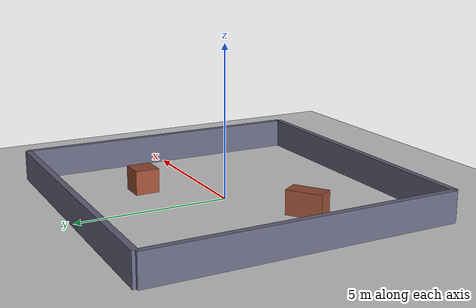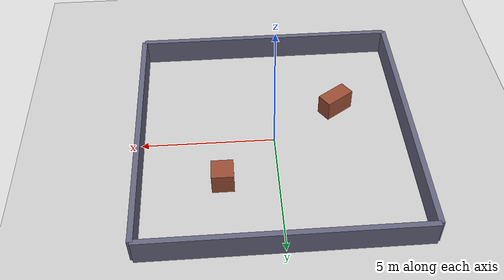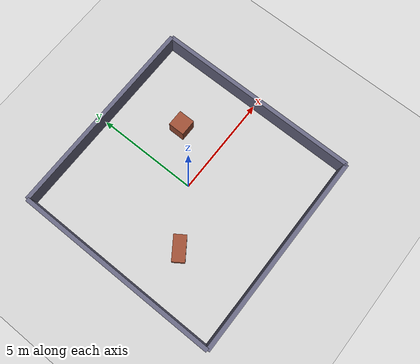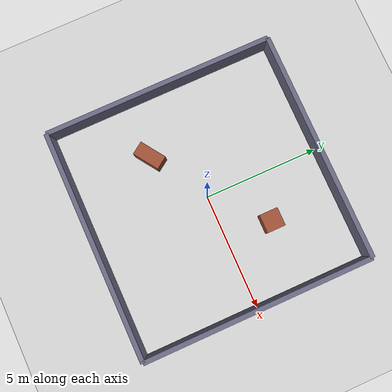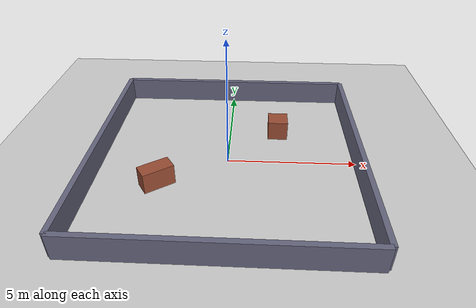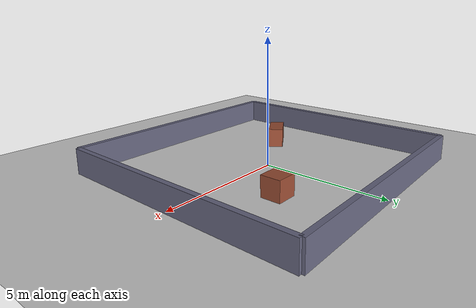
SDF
<?xml version="1.0" ?>
<sdf version="1.8">
  <world name="rover_world">

    <physics name="1ms" type="ignored">
      <max_step_size>0.001</max_step_size>
      <real_time_factor>1.0</real_time_factor>
    </physics>

    <plugin filename="gz-sim-physics-system"
            name="gz::sim::systems::Physics"/>
    <plugin filename="gz-sim-user-commands-system"
            name="gz::sim::systems::UserCommands"/>
    <plugin filename="gz-sim-scene-broadcaster-system"
            name="gz::sim::systems::SceneBroadcaster"/>
    <plugin filename="gz-sim-sensors-system"
            name="gz::sim::systems::Sensors">
      <render_engine>ogre2</render_engine>
    </plugin>

    <light type="directional" name="sun">
      <cast_shadows>true</cast_shadows>
      <pose>0 0 10 0 0 0</pose>
      <diffuse>0.8 0.8 0.8 1</diffuse>
      <specular>0.2 0.2 0.2 1</specular>
      <direction>-0.5 0.1 -0.9</direction>
    </light>

    <model name="ground_plane">
      <static>true</static>
      <link name="link">
        <collision name="collision">
          <geometry><plane><normal>0 0 1</normal><size>100 100</size></plane></geometry>
        </collision>
        <visual name="visual">
          <geometry><plane><normal>0 0 1</normal><size>100 100</size></plane></geometry>
          <material>
            <ambient>0.8 0.8 0.8 1</ambient>
            <diffuse>0.8 0.8 0.8 1</diffuse>
          </material>
        </visual>
      </link>
    </model>

    <model name="wall_north">
      <static>true</static>
      <pose>0 5 0.5 0 0 0</pose>
      <link name="link">
        <collision name="collision">
          <geometry><box><size>10 0.2 1</size></box></geometry>
        </collision>
        <visual name="visual">
          <geometry><box><size>10 0.2 1</size></box></geometry>
          <material>
            <ambient>0.4 0.4 0.5 1</ambient>
            <diffuse>0.4 0.4 0.5 1</diffuse>
          </material>
        </visual>
      </link>
    </model>

    <model name="wall_south">
      <static>true</static>
      <pose>0 -5 0.5 0 0 0</pose>
      <link name="link">
        <collision name="collision">
          <geometry><box><size>10 0.2 1</size></box></geometry>
        </collision>
        <visual name="visual">
          <geometry><box><size>10 0.2 1</size></box></geometry>
          <material>
            <ambient>0.4 0.4 0.5 1</ambient>
            <diffuse>0.4 0.4 0.5 1</diffuse>
          </material>
        </visual>
      </link>
    </model>

    <model name="wall_east">
      <static>true</static>
      <pose>5 0 0.5 0 0 1.5708</pose>
      <link name="link">
        <collision name="collision">
          <geometry><box><size>10 0.2 1</size></box></geometry>
        </collision>
        <visual name="visual">
          <geometry><box><size>10 0.2 1</size></box></geometry>
          <material>
            <ambient>0.4 0.4 0.5 1</ambient>
            <diffuse>0.4 0.4 0.5 1</diffuse>
          </material>
        </visual>
      </link>
    </model>

    <model name="wall_west">
      <static>true</static>
      <pose>-5 0 0.5 0 0 1.5708</pose>
      <link name="link">
        <collision name="collision">
          <geometry><box><size>10 0.2 1</size></box></geometry>
        </collision>
        <visual name="visual">
          <geometry><box><size>10 0.2 1</size></box></geometry>
          <material>
            <ambient>0.4 0.4 0.5 1</ambient>
            <diffuse>0.4 0.4 0.5 1</diffuse>
          </material>
        </visual>
      </link>
    </model>

    <model name="obstacle_1">
      <static>true</static>
      <pose>2 2 0.4 0 0 0</pose>
      <link name="link">
        <collision name="collision">
          <geometry><box><size>0.8 0.8 0.8</size></box></geometry>
        </collision>
        <visual name="visual">
          <geometry><box><size>0.8 0.8 0.8</size></box></geometry>
          <material>
            <ambient>0.6 0.3 0.2 1</ambient>
            <diffuse>0.6 0.3 0.2 1</diffuse>
          </material>
        </visual>
      </link>
    </model>

    <model name="obstacle_2">
      <static>true</static>
      <pose>-2.5 -1.5 0.4 0 0 0.6</pose>
      <link name="link">
        <collision name="collision">
          <geometry><box><size>1.2 0.6 0.8</size></box></geometry>
        </collision>
        <visual name="visual">
          <geometry><box><size>1.2 0.6 0.8</size></box></geometry>
          <material>
            <ambient>0.6 0.3 0.2 1</ambient>
            <diffuse>0.6 0.3 0.2 1</diffuse>
          </material>
        </visual>
      </link>
    </model>

  </world>
</sdf>
